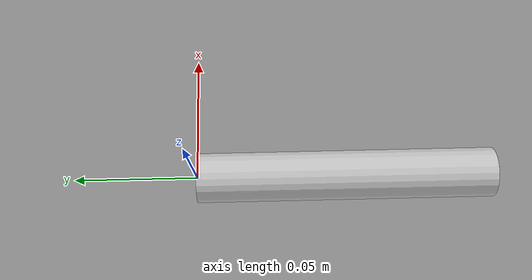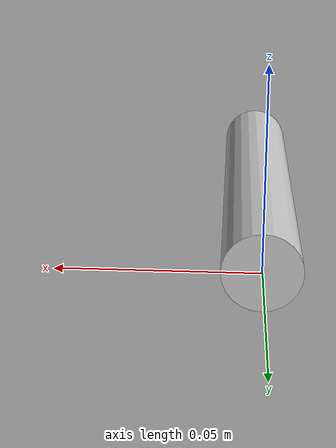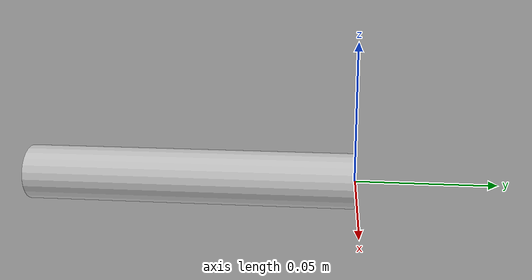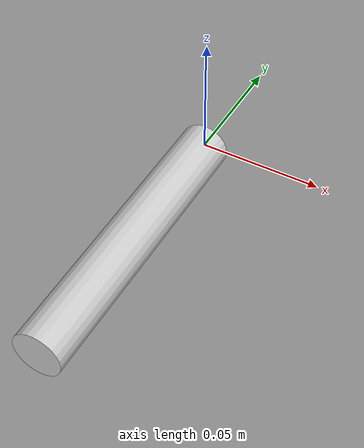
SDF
<?xml version="1.0" ?>
<sdf version="1.5">
  <model name="plastic_bin">
  <static>false</static>
  <pose>0 0 0 0 0 0</pose>
    <link name="link">
      <inertial>
        <mass>1.0</mass>
        <inertia> <!-- inertias are tricky to compute -->
          <!-- http://gazebosim.org/tutorials?tut=inertia&cat=build_robot -->
          <ixx>0.083</ixx>       <!-- for a box: ixx = 0.083 * mass * (y*y + z*z) -->
          <ixy>0.0</ixy>         <!-- for a box: ixy = 0 -->
          <ixz>0.0</ixz>         <!-- for a box: ixz = 0 -->
          <iyy>0.083</iyy>       <!-- for a box: iyy = 0.083 * mass * (x*x + z*z) -->
          <iyz>0.0</iyz>         <!-- for a box: iyz = 0 -->
          <izz>0.083</izz>       <!-- for a box: izz = 0.083 * mass * (x*x + y*y) -->
        </inertia>
      </inertial>
      <collision name="collision">
        <pose>0 0 0 0 0 0</pose>
        <geometry>
          <mesh>
            <uri>model://peppermint_rol/peppermint_rol.dae</uri>
            <scale>1 1 1</scale>
          </mesh>
        </geometry>
      </collision>
      <visual name="visual">
        <pose>0 0 0 0 0 0</pose>
        <geometry>
          <mesh>
            <uri>model://peppermint_rol/peppermint_rol.dae</uri>
            <scale>1 1 1</scale>
          </mesh>
        </geometry>
      </visual>
    </link>
  </model>
</sdf>
